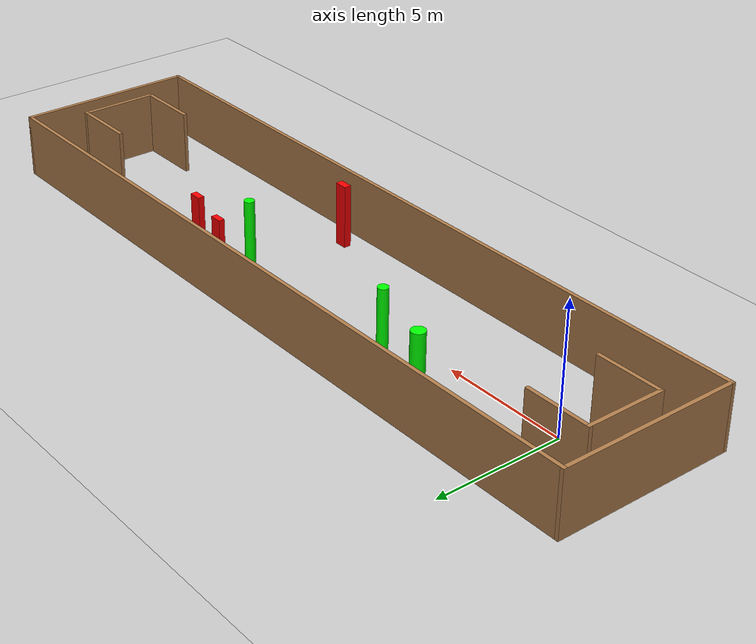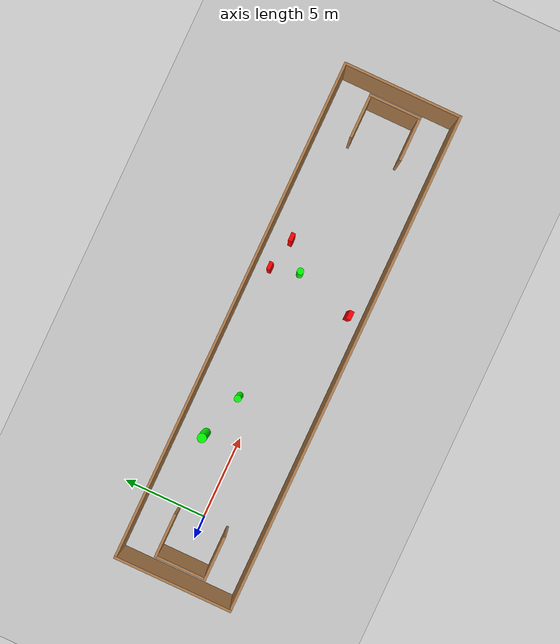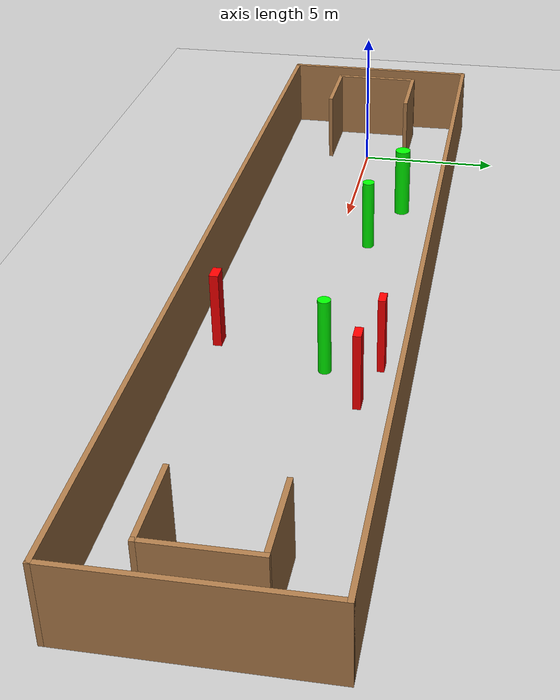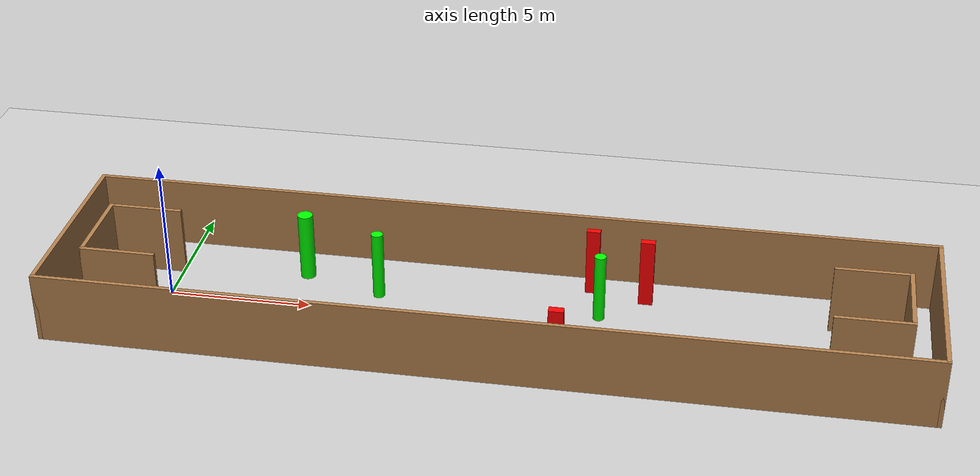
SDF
<sdf version="1.7">
 <world name="default">
  <light name="sun" type="directional">
   <pose>0 0 10 0 -0 0</pose>
   <diffuse>0.8 0.8 0.8 1</diffuse>
   <specular>0.2 0.2 0.2 1</specular>
   <attenuation>
    <range>1000</range>
    <constant>0.9</constant>
    <linear>0.01</linear>
    <quadratic>0.001</quadratic>
   </attenuation>
   <direction>-0.5 0.1 -0.9</direction>
   <spot><inner_angle>0</inner_angle><outer_angle>0</outer_angle><falloff>0</falloff></spot>
  </light>
  <model name="ground_plane">
   <static>1</static>
   <link name="link">
    <collision name="collision">
     <geometry><plane><normal>0 0 1</normal><size>100 100</size></plane></geometry>
     <surface>
      <contact><collide_bitmask>65535</collide_bitmask></contact>
      <friction><ode><mu>100</mu><mu2>50</mu2></ode></friction>
     </surface>
    </collision>
    <visual name="visual">
     <cast_shadows>0</cast_shadows>
     <geometry><plane><normal>0 0 1</normal><size>100 100</size></plane></geometry>
     <material>
      <script><uri>file://media/materials/scripts/gazebo.material</uri><name>Gazebo/Grey</name></script>
     </material>
    </visual>
   </link>
  </model>
  <gravity>0 0 -9.8</gravity>
  <magnetic_field>6e-06 2.3e-05 -4.2e-05</magnetic_field>
  <atmosphere type="adiabatic"/>
  <physics type="ode">
   <max_step_size>0.001</max_step_size>
   <real_time_factor>1</real_time_factor>
   <real_time_update_rate>1000</real_time_update_rate>
  </physics>
  <scene><ambient>0.4 0.4 0.4 1</ambient><background>0.7 0.7 0.7 1</background><shadows>1</shadows></scene>
  <spherical_coordinates>
   <surface_model>EARTH_WGS84</surface_model>
   <latitude_deg>0</latitude_deg>
   <longitude_deg>0</longitude_deg>
   <elevation>0</elevation>
   <heading_deg>0</heading_deg>
  </spherical_coordinates>
  <model name="my_base_walls">
   <link name="Wall_0">
    <collision name="Wall_0_Collision">
     <geometry><box><size>7.15 0.15 2.5</size></box></geometry>
     <pose>0 0 1.25 0 -0 0</pose>
    </collision>
    <visual name="Wall_0_Visual">
     <pose>0 0 1.25 0 -0 0</pose>
     <geometry><box><size>7.15 0.15 2.5</size></box></geometry>
     <material>
      <script><uri>file://media/materials/scripts/gazebo.material</uri><name>Gazebo/Wood</name></script>
      <ambient>1 1 1 1</ambient>
     </material>
     <meta><layer>0</layer></meta>
    </visual>
    <pose>-15 0 0 0 -0 1.5708</pose>
   </link>
   <link name="Wall_10">
    <collision name="Wall_10_Collision">
     <geometry><box><size>2.65 0.15 2.5</size></box></geometry>
     <pose>0 0 1.25 0 -0 0</pose>
    </collision>
    <visual name="Wall_10_Visual">
     <pose>0 0 1.25 0 -0 0</pose>
     <geometry><box><size>2.65 0.15 2.5</size></box></geometry>
     <material>
      <script><uri>file://media/materials/scripts/gazebo.material</uri><name>Gazebo/Wood</name></script>
      <ambient>1 1 1 1</ambient>
     </material>
     <meta><layer>0</layer></meta>
    </visual>
    <pose>-12.75 -1.5 0 0 -0 0</pose>
   </link>
   <link name="Wall_12">
    <collision name="Wall_12_Collision">
     <geometry><box><size>2.65 0.15 2.5</size></box></geometry>
     <pose>0 0 1.25 0 -0 0</pose>
    </collision>
    <visual name="Wall_12_Visual">
     <pose>0 0 1.25 0 -0 0</pose>
     <geometry><box><size>2.65 0.15 2.5</size></box></geometry>
     <material>
      <script><uri>file://media/materials/scripts/gazebo.material</uri><name>Gazebo/Wood</name></script>
      <ambient>1 1 1 1</ambient>
     </material>
     <meta><layer>0</layer></meta>
    </visual>
    <pose>-12.75 1.5 0 0 -0 0</pose>
   </link>
   <link name="Wall_14">
    <collision name="Wall_14_Collision">
     <geometry><box><size>3.15 0.15 2.5</size></box></geometry>
     <pose>0 0 1.25 0 -0 0</pose>
    </collision>
    <visual name="Wall_14_Visual">
     <pose>0 0 1.25 0 -0 0</pose>
     <geometry><box><size>3.15 0.15 2.5</size></box></geometry>
     <material>
      <script><uri>file://media/materials/scripts/gazebo.material</uri><name>Gazebo/Wood</name></script>
      <ambient>1 1 1 1</ambient>
     </material>
     <meta><layer>0</layer></meta>
    </visual>
    <pose>14 0 0 0 -0 -1.5708</pose>
   </link>
   <link name="Wall_15">
    <collision name="Wall_15_Collision">
     <geometry><box><size>2.65 0.15 2.5</size></box></geometry>
     <pose>0 0 1.25 0 -0 0</pose>
    </collision>
    <visual name="Wall_15_Visual">
     <pose>0 0 1.25 0 -0 0</pose>
     <geometry><box><size>2.65 0.15 2.5</size></box></geometry>
     <material>
      <script><uri>file://media/materials/scripts/gazebo.material</uri><name>Gazebo/Wood</name></script>
      <ambient>1 1 1 1</ambient>
     </material>
     <meta><layer>0</layer></meta>
    </visual>
    <pose>12.75 -1.5 0 0 -0 3.14159</pose>
   </link>
   <link name="Wall_17">
    <collision name="Wall_17_Collision">
     <geometry><box><size>2.65 0.15 2.5</size></box></geometry>
     <pose>0 0 1.25 0 -0 0</pose>
    </collision>
    <visual name="Wall_17_Visual">
     <pose>0 0 1.25 0 -0 0</pose>
     <geometry><box><size>2.65 0.15 2.5</size></box></geometry>
     <material>
      <script><uri>file://media/materials/scripts/gazebo.material</uri><name>Gazebo/Wood</name></script>
      <ambient>1 1 1 1</ambient>
     </material>
     <meta><layer>0</layer></meta>
    </visual>
    <pose>12.75 1.5 0 0 -0 3.14159</pose>
   </link>
   <link name="Wall_2">
    <collision name="Wall_2_Collision">
     <geometry><box><size>30.15 0.15 2.5</size></box></geometry>
     <pose>0 0 1.25 0 -0 0</pose>
    </collision>
    <visual name="Wall_2_Visual">
     <pose>0 0 1.25 0 -0 0</pose>
     <geometry><box><size>30.15 0.15 2.5</size></box></geometry>
     <material>
      <script><uri>file://media/materials/scripts/gazebo.material</uri><name>Gazebo/Wood</name></script>
      <ambient>1 1 1 1</ambient>
     </material>
     <meta><layer>0</layer></meta>
    </visual>
    <pose>-0 -3.5 0 0 -0 0</pose>
   </link>
   <link name="Wall_4">
    <collision name="Wall_4_Collision">
     <geometry><box><size>30.15 0.15 2.5</size></box></geometry>
     <pose>0 0 1.25 0 -0 0</pose>
    </collision>
    <visual name="Wall_4_Visual">
     <pose>0 0 1.25 0 -0 0</pose>
     <geometry><box><size>30.15 0.15 2.5</size></box></geometry>
     <material>
      <script><uri>file://media/materials/scripts/gazebo.material</uri><name>Gazebo/Wood</name></script>
      <ambient>1 1 1 1</ambient>
     </material>
     <meta><layer>0</layer></meta>
    </visual>
    <pose>-0 3.5 0 0 -0 0</pose>
   </link>
   <link name="Wall_6">
    <collision name="Wall_6_Collision">
     <geometry><box><size>7.15 0.15 2.5</size></box></geometry>
     <pose>0 0 1.25 0 -0 0</pose>
    </collision>
    <visual name="Wall_6_Visual">
     <pose>0 0 1.25 0 -0 0</pose>
     <geometry><box><size>7.15 0.15 2.5</size></box></geometry>
     <material>
      <script><uri>file://media/materials/scripts/gazebo.material</uri><name>Gazebo/Wood</name></script>
      <ambient>1 1 1 1</ambient>
     </material>
     <meta><layer>0</layer></meta>
    </visual>
    <pose>15 0 0 0 -0 -1.5708</pose>
   </link>
   <link name="Wall_9">
    <collision name="Wall_9_Collision">
     <geometry><box><size>3.15 0.15 2.5</size></box></geometry>
     <pose>0 0 1.25 0 -0 0</pose>
    </collision>
    <visual name="Wall_9_Visual">
     <pose>0 0 1.25 0 -0 0</pose>
     <geometry><box><size>3.15 0.15 2.5</size></box></geometry>
     <material>
      <script><uri>file://media/materials/scripts/gazebo.material</uri><name>Gazebo/Wood</name></script>
      <ambient>1 1 1 1</ambient>
     </material>
     <meta><layer>0</layer></meta>
    </visual>
    <pose>-14 0 0 0 -0 -1.5708</pose>
   </link>
   <static>1</static>
   <pose>11.5 0 0 0 -0 0</pose>
  </model>
  <model name="cylinder1">
   <static>1</static>
   <link name="link">
    <inertial>
     <mass>1</mass>
     <inertia><ixx>0.5</ixx><ixy>0</ixy><ixz>0</ixz><iyy>0.5</iyy><iyz>0</iyz><izz>1</izz></inertia>
    </inertial>
    <collision name="collision">
     <geometry><cylinder><radius>0.20157350058565282</radius><length>2.5</length></cylinder></geometry>
    </collision>
    <visual name="visual">
     <geometry><cylinder><radius>0.20157350058565282</radius><length>2.5</length></cylinder></geometry>
     <material>
      <ambient>0 1 0 1</ambient>
      <diffuse>0 1 0 1</diffuse>
      <specular>0.1 0.1 0.1 1</specular>
      <emissive>0 0 0 0</emissive>
     </material>
    </visual>
   </link>
   <pose>15.083205183366507 0.9020918880289326 1.25 0 0 0</pose>
  </model>
  <model name="cylinder2">
   <static>1</static>
   <link name="link">
    <inertial>
     <mass>1</mass>
     <inertia><ixx>0.5</ixx><ixy>0</ixy><ixz>0</ixz><iyy>0.5</iyy><iyz>0</iyz><izz>1</izz></inertia>
    </inertial>
    <collision name="collision">
     <geometry><cylinder><radius>0.20692005003839872</radius><length>2.5</length></cylinder></geometry>
    </collision>
    <visual name="visual">
     <geometry><cylinder><radius>0.20692005003839872</radius><length>2.5</length></cylinder></geometry>
     <material>
      <ambient>0 1 0 1</ambient>
      <diffuse>0 1 0 1</diffuse>
      <specular>0.1 0.1 0.1 1</specular>
      <emissive>0 0 0 0</emissive>
     </material>
    </visual>
   </link>
   <pose>7.268668728379264 1.0725116518311415 1.25 0 0 0</pose>
  </model>
  <model name="cylinder3">
   <static>1</static>
   <link name="link">
    <inertial>
     <mass>1</mass>
     <inertia><ixx>0.5</ixx><ixy>0</ixy><ixz>0</ixz><iyy>0.5</iyy><iyz>0</iyz><izz>1</izz></inertia>
    </inertial>
    <collision name="collision">
     <geometry><cylinder><radius>0.26971283000651086</radius><length>2.5</length></cylinder></geometry>
    </collision>
    <visual name="visual">
     <geometry><cylinder><radius>0.26971283000651086</radius><length>2.5</length></cylinder></geometry>
     <material>
      <ambient>0 1 0 1</ambient>
      <diffuse>0 1 0 1</diffuse>
      <specular>0.1 0.1 0.1 1</specular>
      <emissive>0 0 0 0</emissive>
     </material>
    </visual>
   </link>
   <pose>4.47750001755424 1.9428638851400226 1.25 0 0 0</pose>
  </model>
  <model name="box1">
   <static>1</static>
   <link name="link">
    <inertial>
     <mass>1</mass>
     <inertia><ixx>0.083</ixx><ixy>0</ixy><ixz>0</ixz><iyy>0.083</iyy><iyz>0</iyz><izz>0.083</izz></inertia>
    </inertial>
    <collision name="collision">
     <geometry><box><size>0.49519299998720473 0.24566474701967075 2.5</size></box></geometry>
    </collision>
    <visual name="visual">
     <geometry><box><size>0.49519299998720473 0.24566474701967075 2.5</size></box></geometry>
     <material>
      <ambient>1 0 0 1</ambient>
      <diffuse>1 0 0 1</diffuse>
      <specular>0.1 0.1 0.1 1</specular>
      <emissive>0 0 0 0</emissive>
     </material>
    </visual>
    <sensor name="my_contact" type="contact">
     <contact><collision>box_collision</collision><topic>__default_topic__</topic></contact>
    </sensor>
   </link>
   <pose>16.58884975967718 2.1331975449046876 1.25 0 0 0</pose>
  </model>
  <model name="box2">
   <static>1</static>
   <link name="link">
    <inertial>
     <mass>1</mass>
     <inertia><ixx>0.083</ixx><ixy>0</ixy><ixz>0</ixz><iyy>0.083</iyy><iyz>0</iyz><izz>0.083</izz></inertia>
    </inertial>
    <collision name="collision">
     <geometry><box><size>0.5118868228076705 0.28075756171700117 2.5</size></box></geometry>
    </collision>
    <visual name="visual">
     <geometry><box><size>0.5118868228076705 0.28075756171700117 2.5</size></box></geometry>
     <material>
      <ambient>1 0 0 1</ambient>
      <diffuse>1 0 0 1</diffuse>
      <specular>0.1 0.1 0.1 1</specular>
      <emissive>0 0 0 0</emissive>
     </material>
    </visual>
    <sensor name="my_contact" type="contact">
     <contact><collision>box_collision</collision><topic>__default_topic__</topic></contact>
    </sensor>
   </link>
   <pose>14.048377723042186 -2.611304835917651 1.25 0 0 0</pose>
  </model>
  <model name="box3">
   <static>1</static>
   <link name="link">
    <inertial>
     <mass>1</mass>
     <inertia><ixx>0.083</ixx><ixy>0</ixy><ixz>0</ixz><iyy>0.083</iyy><iyz>0</iyz><izz>0.083</izz></inertia>
    </inertial>
    <collision name="collision">
     <geometry><box><size>0.47648720593909444 0.22514865972701958 2.5</size></box></geometry>
    </collision>
    <visual name="visual">
     <geometry><box><size>0.47648720593909444 0.22514865972701958 2.5</size></box></geometry>
     <material>
      <ambient>1 0 0 1</ambient>
      <diffuse>1 0 0 1</diffuse>
      <specular>0.1 0.1 0.1 1</specular>
      <emissive>0 0 0 0</emissive>
     </material>
    </visual>
    <sensor name="my_contact" type="contact">
     <contact><collision>box_collision</collision><topic>__default_topic__</topic></contact>
    </sensor>
   </link>
   <pose>14.655400853988974 2.56301651545321 1.25 0 0 0</pose>
  </model>
 </world>
</sdf>
